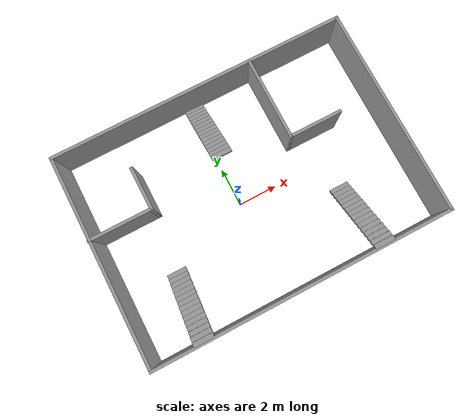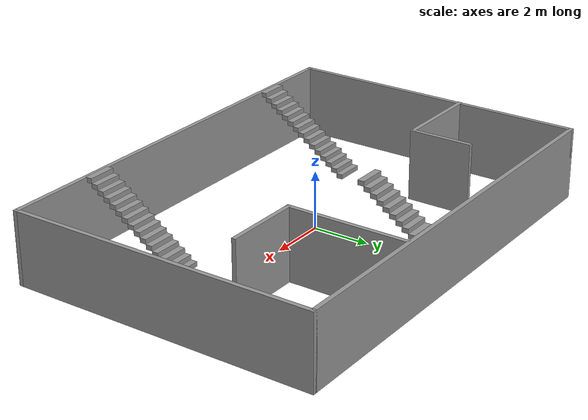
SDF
<?xml version='1.0'?>
<sdf version='1.7'>
  <model name='wall2'>
    <pose>0.678452 0.306167 0 0 -0 0</pose>
    <link name='Stairs_0'>
      <visual name='Stairs_0_Visual_0'>
        <pose>-4.95454 -1.89617 0.083333 0 -0 0</pose>
        <geometry>
          <box>
            <size>1 0.233333 0.166667</size>
          </box>
        </geometry>
        <material>
          <script>
            <uri>file://media/materials/scripts/gazebo.material</uri>
            <name>Gazebo/Grey</name>
          </script>
          <ambient>1 1 1 1</ambient>
        </material>
        <meta>
          <layer>0</layer>
        </meta>
      </visual>
      <collision name='Stairs_0_Collision_0'>
        <geometry>
          <box>
            <size>1 0.233333 0.166667</size>
          </box>
        </geometry>
        <pose>-4.95454 -1.89617 0.083333 0 -0 0</pose>
      </collision>
      <visual name='Stairs_0_Visual_1'>
        <pose>-4.95454 -2.1295 0.25 0 -0 0</pose>
        <geometry>
          <box>
            <size>1 0.233333 0.166667</size>
          </box>
        </geometry>
        <material>
          <script>
            <uri>file://media/materials/scripts/gazebo.material</uri>
            <name>Gazebo/Grey</name>
          </script>
          <ambient>1 1 1 1</ambient>
        </material>
        <meta>
          <layer>0</layer>
        </meta>
      </visual>
      <collision name='Stairs_0_Collision_1'>
        <geometry>
          <box>
            <size>1 0.233333 0.166667</size>
          </box>
        </geometry>
        <pose>-4.95454 -2.1295 0.25 0 -0 0</pose>
      </collision>
      <visual name='Stairs_0_Visual_2'>
        <pose>-4.95454 -2.36284 0.416667 0 -0 0</pose>
        <geometry>
          <box>
            <size>1 0.233333 0.166667</size>
          </box>
        </geometry>
        <material>
          <script>
            <uri>file://media/materials/scripts/gazebo.material</uri>
            <name>Gazebo/Grey</name>
          </script>
          <ambient>1 1 1 1</ambient>
        </material>
        <meta>
          <layer>0</layer>
        </meta>
      </visual>
      <collision name='Stairs_0_Collision_2'>
        <geometry>
          <box>
            <size>1 0.233333 0.166667</size>
          </box>
        </geometry>
        <pose>-4.95454 -2.36284 0.416667 0 -0 0</pose>
      </collision>
      <visual name='Stairs_0_Visual_3'>
        <pose>-4.95454 -2.59617 0.583333 0 -0 0</pose>
        <geometry>
          <box>
            <size>1 0.233333 0.166667</size>
          </box>
        </geometry>
        <material>
          <script>
            <uri>file://media/materials/scripts/gazebo.material</uri>
            <name>Gazebo/Grey</name>
          </script>
          <ambient>1 1 1 1</ambient>
        </material>
        <meta>
          <layer>0</layer>
        </meta>
      </visual>
      <collision name='Stairs_0_Collision_3'>
        <geometry>
          <box>
            <size>1 0.233333 0.166667</size>
          </box>
        </geometry>
        <pose>-4.95454 -2.59617 0.583333 0 -0 0</pose>
      </collision>
      <visual name='Stairs_0_Visual_4'>
        <pose>-4.95454 -2.8295 0.75 0 -0 0</pose>
        <geometry>
          <box>
            <size>1 0.233333 0.166667</size>
          </box>
        </geometry>
        <material>
          <script>
            <uri>file://media/materials/scripts/gazebo.material</uri>
            <name>Gazebo/Grey</name>
          </script>
          <ambient>1 1 1 1</ambient>
        </material>
        <meta>
          <layer>0</layer>
        </meta>
      </visual>
      <collision name='Stairs_0_Collision_4'>
        <geometry>
          <box>
            <size>1 0.233333 0.166667</size>
          </box>
        </geometry>
        <pose>-4.95454 -2.8295 0.75 0 -0 0</pose>
      </collision>
      <visual name='Stairs_0_Visual_5'>
        <pose>-4.95454 -3.06284 0.916667 0 -0 0</pose>
        <geometry>
          <box>
            <size>1 0.233333 0.166667</size>
          </box>
        </geometry>
        <material>
          <script>
            <uri>file://media/materials/scripts/gazebo.material</uri>
            <name>Gazebo/Grey</name>
          </script>
          <ambient>1 1 1 1</ambient>
        </material>
        <meta>
          <layer>0</layer>
        </meta>
      </visual>
      <collision name='Stairs_0_Collision_5'>
        <geometry>
          <box>
            <size>1 0.233333 0.166667</size>
          </box>
        </geometry>
        <pose>-4.95454 -3.06284 0.916667 0 -0 0</pose>
      </collision>
      <visual name='Stairs_0_Visual_6'>
        <pose>-4.95454 -3.29617 1.08333 0 -0 0</pose>
        <geometry>
          <box>
            <size>1 0.233333 0.166667</size>
          </box>
        </geometry>
        <material>
          <script>
            <uri>file://media/materials/scripts/gazebo.material</uri>
            <name>Gazebo/Grey</name>
          </script>
          <ambient>1 1 1 1</ambient>
        </material>
        <meta>
          <layer>0</layer>
        </meta>
      </visual>
      <collision name='Stairs_0_Collision_6'>
        <geometry>
          <box>
            <size>1 0.233333 0.166667</size>
          </box>
        </geometry>
        <pose>-4.95454 -3.29617 1.08333 0 -0 0</pose>
      </collision>
      <visual name='Stairs_0_Visual_7'>
        <pose>-4.95454 -3.5295 1.25 0 -0 0</pose>
        <geometry>
          <box>
            <size>1 0.233333 0.166667</size>
          </box>
        </geometry>
        <material>
          <script>
            <uri>file://media/materials/scripts/gazebo.material</uri>
            <name>Gazebo/Grey</name>
          </script>
          <ambient>1 1 1 1</ambient>
        </material>
        <meta>
          <layer>0</layer>
        </meta>
      </visual>
      <collision name='Stairs_0_Collision_7'>
        <geometry>
          <box>
            <size>1 0.233333 0.166667</size>
          </box>
        </geometry>
        <pose>-4.95454 -3.5295 1.25 0 -0 0</pose>
      </collision>
      <visual name='Stairs_0_Visual_8'>
        <pose>-4.95454 -3.76283 1.41667 0 -0 0</pose>
        <geometry>
          <box>
            <size>1 0.233333 0.166667</size>
          </box>
        </geometry>
        <material>
          <script>
            <uri>file://media/materials/scripts/gazebo.material</uri>
            <name>Gazebo/Grey</name>
          </script>
          <ambient>1 1 1 1</ambient>
        </material>
        <meta>
          <layer>0</layer>
        </meta>
      </visual>
      <collision name='Stairs_0_Collision_8'>
        <geometry>
          <box>
            <size>1 0.233333 0.166667</size>
          </box>
        </geometry>
        <pose>-4.95454 -3.76283 1.41667 0 -0 0</pose>
      </collision>
      <visual name='Stairs_0_Visual_9'>
        <pose>-4.95454 -3.99617 1.58333 0 -0 0</pose>
        <geometry>
          <box>
            <size>1 0.233333 0.166667</size>
          </box>
        </geometry>
        <material>
          <script>
            <uri>file://media/materials/scripts/gazebo.material</uri>
            <name>Gazebo/Grey</name>
          </script>
          <ambient>1 1 1 1</ambient>
        </material>
        <meta>
          <layer>0</layer>
        </meta>
      </visual>
      <collision name='Stairs_0_Collision_9'>
        <geometry>
          <box>
            <size>1 0.233333 0.166667</size>
          </box>
        </geometry>
        <pose>-4.95454 -3.99617 1.58333 0 -0 0</pose>
      </collision>
      <visual name='Stairs_0_Visual_10'>
        <pose>-4.95454 -4.2295 1.75 0 -0 0</pose>
        <geometry>
          <box>
            <size>1 0.233333 0.166667</size>
          </box>
        </geometry>
        <material>
          <script>
            <uri>file://media/materials/scripts/gazebo.material</uri>
            <name>Gazebo/Grey</name>
          </script>
          <ambient>1 1 1 1</ambient>
        </material>
        <meta>
          <layer>0</layer>
        </meta>
      </visual>
      <collision name='Stairs_0_Collision_10'>
        <geometry>
          <box>
            <size>1 0.233333 0.166667</size>
          </box>
        </geometry>
        <pose>-4.95454 -4.2295 1.75 0 -0 0</pose>
      </collision>
      <visual name='Stairs_0_Visual_11'>
        <pose>-4.95454 -4.46284 1.91667 0 -0 0</pose>
        <geometry>
          <box>
            <size>1 0.233333 0.166667</size>
          </box>
        </geometry>
        <material>
          <script>
            <uri>file://media/materials/scripts/gazebo.material</uri>
            <name>Gazebo/Grey</name>
          </script>
          <ambient>1 1 1 1</ambient>
        </material>
        <meta>
          <layer>0</layer>
        </meta>
      </visual>
      <collision name='Stairs_0_Collision_11'>
        <geometry>
          <box>
            <size>1 0.233333 0.166667</size>
          </box>
        </geometry>
        <pose>-4.95454 -4.46284 1.91667 0 -0 0</pose>
      </collision>
      <visual name='Stairs_0_Visual_12'>
        <pose>-4.95454 -4.69617 2.08333 0 -0 0</pose>
        <geometry>
          <box>
            <size>1 0.233333 0.166667</size>
          </box>
        </geometry>
        <material>
          <script>
            <uri>file://media/materials/scripts/gazebo.material</uri>
            <name>Gazebo/Grey</name>
          </script>
          <ambient>1 1 1 1</ambient>
        </material>
        <meta>
          <layer>0</layer>
        </meta>
      </visual>
      <collision name='Stairs_0_Collision_12'>
        <geometry>
          <box>
            <size>1 0.233333 0.166667</size>
          </box>
        </geometry>
        <pose>-4.95454 -4.69617 2.08333 0 -0 0</pose>
      </collision>
      <visual name='Stairs_0_Visual_13'>
        <pose>-4.95454 -4.9295 2.25 0 -0 0</pose>
        <geometry>
          <box>
            <size>1 0.233333 0.166667</size>
          </box>
        </geometry>
        <material>
          <script>
            <uri>file://media/materials/scripts/gazebo.material</uri>
            <name>Gazebo/Grey</name>
          </script>
          <ambient>1 1 1 1</ambient>
        </material>
        <meta>
          <layer>0</layer>
        </meta>
      </visual>
      <collision name='Stairs_0_Collision_13'>
        <geometry>
          <box>
            <size>1 0.233333 0.166667</size>
          </box>
        </geometry>
        <pose>-4.95454 -4.9295 2.25 0 -0 0</pose>
      </collision>
      <visual name='Stairs_0_Visual_14'>
        <pose>-4.95454 -5.16284 2.41667 0 -0 0</pose>
        <geometry>
          <box>
            <size>1 0.233333 0.166667</size>
          </box>
        </geometry>
        <material>
          <script>
            <uri>file://media/materials/scripts/gazebo.material</uri>
            <name>Gazebo/Grey</name>
          </script>
          <ambient>1 1 1 1</ambient>
        </material>
        <meta>
          <layer>0</layer>
        </meta>
      </visual>
      <collision name='Stairs_0_Collision_14'>
        <geometry>
          <box>
            <size>1 0.233333 0.166667</size>
          </box>
        </geometry>
        <pose>-4.95454 -5.16284 2.41667 0 -0 0</pose>
      </collision>
    </link>
    <link name='Stairs_1'>
      <visual name='Stairs_1_Visual_0'>
        <pose>-0.485702 5.12628 0.083333 0 -0 0</pose>
        <geometry>
          <box>
            <size>1 0.233333 0.166667</size>
          </box>
        </geometry>
        <material>
          <script>
            <uri>file://media/materials/scripts/gazebo.material</uri>
            <name>Gazebo/Grey</name>
          </script>
          <ambient>1 1 1 1</ambient>
        </material>
        <meta>
          <layer>0</layer>
        </meta>
      </visual>
      <collision name='Stairs_1_Collision_0'>
        <geometry>
          <box>
            <size>1 0.233333 0.166667</size>
          </box>
        </geometry>
        <pose>-0.485702 5.12628 0.083333 0 -0 0</pose>
      </collision>
      <visual name='Stairs_1_Visual_1'>
        <pose>-0.485702 4.89295 0.25 0 -0 0</pose>
        <geometry>
          <box>
            <size>1 0.233333 0.166667</size>
          </box>
        </geometry>
        <material>
          <script>
            <uri>file://media/materials/scripts/gazebo.material</uri>
            <name>Gazebo/Grey</name>
          </script>
          <ambient>1 1 1 1</ambient>
        </material>
        <meta>
          <layer>0</layer>
        </meta>
      </visual>
      <collision name='Stairs_1_Collision_1'>
        <geometry>
          <box>
            <size>1 0.233333 0.166667</size>
          </box>
        </geometry>
        <pose>-0.485702 4.89295 0.25 0 -0 0</pose>
      </collision>
      <visual name='Stairs_1_Visual_2'>
        <pose>-0.485702 4.65962 0.416667 0 -0 0</pose>
        <geometry>
          <box>
            <size>1 0.233333 0.166667</size>
          </box>
        </geometry>
        <material>
          <script>
            <uri>file://media/materials/scripts/gazebo.material</uri>
            <name>Gazebo/Grey</name>
          </script>
          <ambient>1 1 1 1</ambient>
        </material>
        <meta>
          <layer>0</layer>
        </meta>
      </visual>
      <collision name='Stairs_1_Collision_2'>
        <geometry>
          <box>
            <size>1 0.233333 0.166667</size>
          </box>
        </geometry>
        <pose>-0.485702 4.65962 0.416667 0 -0 0</pose>
      </collision>
      <visual name='Stairs_1_Visual_3'>
        <pose>-0.485702 4.42628 0.583333 0 -0 0</pose>
        <geometry>
          <box>
            <size>1 0.233333 0.166667</size>
          </box>
        </geometry>
        <material>
          <script>
            <uri>file://media/materials/scripts/gazebo.material</uri>
            <name>Gazebo/Grey</name>
          </script>
          <ambient>1 1 1 1</ambient>
        </material>
        <meta>
          <layer>0</layer>
        </meta>
      </visual>
      <collision name='Stairs_1_Collision_3'>
        <geometry>
          <box>
            <size>1 0.233333 0.166667</size>
          </box>
        </geometry>
        <pose>-0.485702 4.42628 0.583333 0 -0 0</pose>
      </collision>
      <visual name='Stairs_1_Visual_4'>
        <pose>-0.485702 4.19295 0.75 0 -0 0</pose>
        <geometry>
          <box>
            <size>1 0.233333 0.166667</size>
          </box>
        </geometry>
        <material>
          <script>
            <uri>file://media/materials/scripts/gazebo.material</uri>
            <name>Gazebo/Grey</name>
          </script>
          <ambient>1 1 1 1</ambient>
        </material>
        <meta>
          <layer>0</layer>
        </meta>
      </visual>
      <collision name='Stairs_1_Collision_4'>
        <geometry>
          <box>
            <size>1 0.233333 0.166667</size>
          </box>
        </geometry>
        <pose>-0.485702 4.19295 0.75 0 -0 0</pose>
      </collision>
      <visual name='Stairs_1_Visual_5'>
        <pose>-0.485702 3.95962 0.916667 0 -0 0</pose>
        <geometry>
          <box>
            <size>1 0.233333 0.166667</size>
          </box>
        </geometry>
        <material>
          <script>
            <uri>file://media/materials/scripts/gazebo.material</uri>
            <name>Gazebo/Grey</name>
          </script>
          <ambient>1 1 1 1</ambient>
        </material>
        <meta>
          <layer>0</layer>
        </meta>
      </visual>
      <collision name='Stairs_1_Collision_5'>
        <geometry>
          <box>
            <size>1 0.233333 0.166667</size>
          </box>
        </geometry>
        <pose>-0.485702 3.95962 0.916667 0 -0 0</pose>
      </collision>
      <visual name='Stairs_1_Visual_6'>
        <pose>-0.485702 3.72628 1.08333 0 -0 0</pose>
        <geometry>
          <box>
            <size>1 0.233333 0.166667</size>
          </box>
        </geometry>
        <material>
          <script>
            <uri>file://media/materials/scripts/gazebo.material</uri>
            <name>Gazebo/Grey</name>
          </script>
          <ambient>1 1 1 1</ambient>
        </material>
        <meta>
          <layer>0</layer>
        </meta>
      </visual>
      <collision name='Stairs_1_Collision_6'>
        <geometry>
          <box>
            <size>1 0.233333 0.166667</size>
          </box>
        </geometry>
        <pose>-0.485702 3.72628 1.08333 0 -0 0</pose>
      </collision>
      <visual name='Stairs_1_Visual_7'>
        <pose>-0.485702 3.49295 1.25 0 -0 0</pose>
        <geometry>
          <box>
            <size>1 0.233333 0.166667</size>
          </box>
        </geometry>
        <material>
          <script>
            <uri>file://media/materials/scripts/gazebo.material</uri>
            <name>Gazebo/Grey</name>
          </script>
          <ambient>1 1 1 1</ambient>
        </material>
        <meta>
          <layer>0</layer>
        </meta>
      </visual>
      <collision name='Stairs_1_Collision_7'>
        <geometry>
          <box>
            <size>1 0.233333 0.166667</size>
          </box>
        </geometry>
        <pose>-0.485702 3.49295 1.25 0 -0 0</pose>
      </collision>
      <visual name='Stairs_1_Visual_8'>
        <pose>-0.485702 3.25962 1.41667 0 -0 0</pose>
        <geometry>
          <box>
            <size>1 0.233333 0.166667</size>
          </box>
        </geometry>
        <material>
          <script>
            <uri>file://media/materials/scripts/gazebo.material</uri>
            <name>Gazebo/Grey</name>
          </script>
          <ambient>1 1 1 1</ambient>
        </material>
        <meta>
          <layer>0</layer>
        </meta>
      </visual>
      <collision name='Stairs_1_Collision_8'>
        <geometry>
          <box>
            <size>1 0.233333 0.166667</size>
          </box>
        </geometry>
        <pose>-0.485702 3.25962 1.41667 0 -0 0</pose>
      </collision>
      <visual name='Stairs_1_Visual_9'>
        <pose>-0.485702 3.02628 1.58333 0 -0 0</pose>
        <geometry>
          <box>
            <size>1 0.233333 0.166667</size>
          </box>
        </geometry>
        <material>
          <script>
            <uri>file://media/materials/scripts/gazebo.material</uri>
            <name>Gazebo/Grey</name>
          </script>
          <ambient>1 1 1 1</ambient>
        </material>
        <meta>
          <layer>0</layer>
        </meta>
      </visual>
      <collision name='Stairs_1_Collision_9'>
        <geometry>
          <box>
            <size>1 0.233333 0.166667</size>
          </box>
        </geometry>
        <pose>-0.485702 3.02628 1.58333 0 -0 0</pose>
      </collision>
      <visual name='Stairs_1_Visual_10'>
        <pose>-0.485702 2.79295 1.75 0 -0 0</pose>
        <geometry>
          <box>
            <size>1 0.233333 0.166667</size>
          </box>
        </geometry>
        <material>
          <script>
            <uri>file://media/materials/scripts/gazebo.material</uri>
            <name>Gazebo/Grey</name>
          </script>
          <ambient>1 1 1 1</ambient>
        </material>
        <meta>
          <layer>0</layer>
        </meta>
      </visual>
      <collision name='Stairs_1_Collision_10'>
        <geometry>
          <box>
            <size>1 0.233333 0.166667</size>
          </box>
        </geometry>
        <pose>-0.485702 2.79295 1.75 0 -0 0</pose>
      </collision>
      <visual name='Stairs_1_Visual_11'>
        <pose>-0.485702 2.55962 1.91667 0 -0 0</pose>
        <geometry>
          <box>
            <size>1 0.233333 0.166667</size>
          </box>
        </geometry>
        <material>
          <script>
            <uri>file://media/materials/scripts/gazebo.material</uri>
            <name>Gazebo/Grey</name>
          </script>
          <ambient>1 1 1 1</ambient>
        </material>
        <meta>
          <layer>0</layer>
        </meta>
      </visual>
      <collision name='Stairs_1_Collision_11'>
        <geometry>
          <box>
            <size>1 0.233333 0.166667</size>
          </box>
        </geometry>
        <pose>-0.485702 2.55962 1.91667 0 -0 0</pose>
      </collision>
      <visual name='Stairs_1_Visual_12'>
        <pose>-0.485702 2.32628 2.08333 0 -0 0</pose>
        <geometry>
          <box>
            <size>1 0.233333 0.166667</size>
          </box>
        </geometry>
        <material>
          <script>
            <uri>file://media/materials/scripts/gazebo.material</uri>
            <name>Gazebo/Grey</name>
          </script>
          <ambient>1 1 1 1</ambient>
        </material>
        <meta>
          <layer>0</layer>
        </meta>
      </visual>
      <collision name='Stairs_1_Collision_12'>
        <geometry>
          <box>
            <size>1 0.233333 0.166667</size>
          </box>
        </geometry>
        <pose>-0.485702 2.32628 2.08333 0 -0 0</pose>
      </collision>
      <visual name='Stairs_1_Visual_13'>
        <pose>-0.485702 2.09295 2.25 0 -0 0</pose>
        <geometry>
          <box>
            <size>1 0.233333 0.166667</size>
          </box>
        </geometry>
        <material>
          <script>
            <uri>file://media/materials/scripts/gazebo.material</uri>
            <name>Gazebo/Grey</name>
          </script>
          <ambient>1 1 1 1</ambient>
        </material>
        <meta>
          <layer>0</layer>
        </meta>
      </visual>
      <collision name='Stairs_1_Collision_13'>
        <geometry>
          <box>
            <size>1 0.233333 0.166667</size>
          </box>
        </geometry>
        <pose>-0.485702 2.09295 2.25 0 -0 0</pose>
      </collision>
      <visual name='Stairs_1_Visual_14'>
        <pose>-0.485702 1.85962 2.41667 0 -0 0</pose>
        <geometry>
          <box>
            <size>1 0.233333 0.166667</size>
          </box>
        </geometry>
        <material>
          <script>
            <uri>file://media/materials/scripts/gazebo.material</uri>
            <name>Gazebo/Grey</name>
          </script>
          <ambient>1 1 1 1</ambient>
        </material>
        <meta>
          <layer>0</layer>
        </meta>
      </visual>
      <collision name='Stairs_1_Collision_14'>
        <geometry>
          <box>
            <size>1 0.233333 0.166667</size>
          </box>
        </geometry>
        <pose>-0.485702 1.85962 2.41667 0 -0 0</pose>
      </collision>
    </link>
    <link name='Stairs_2'>
      <visual name='Stairs_2_Visual_0'>
        <pose>4.11613 -1.89617 0.083333 0 -0 0</pose>
        <geometry>
          <box>
            <size>1 0.233333 0.166667</size>
          </box>
        </geometry>
        <material>
          <script>
            <uri>file://media/materials/scripts/gazebo.material</uri>
            <name>Gazebo/Grey</name>
          </script>
          <ambient>1 1 1 1</ambient>
        </material>
        <meta>
          <layer>0</layer>
        </meta>
      </visual>
      <collision name='Stairs_2_Collision_0'>
        <geometry>
          <box>
            <size>1 0.233333 0.166667</size>
          </box>
        </geometry>
        <pose>4.11613 -1.89617 0.083333 0 -0 0</pose>
      </collision>
      <visual name='Stairs_2_Visual_1'>
        <pose>4.11613 -2.1295 0.25 0 -0 0</pose>
        <geometry>
          <box>
            <size>1 0.233333 0.166667</size>
          </box>
        </geometry>
        <material>
          <script>
            <uri>file://media/materials/scripts/gazebo.material</uri>
            <name>Gazebo/Grey</name>
          </script>
          <ambient>1 1 1 1</ambient>
        </material>
        <meta>
          <layer>0</layer>
        </meta>
      </visual>
      <collision name='Stairs_2_Collision_1'>
        <geometry>
          <box>
            <size>1 0.233333 0.166667</size>
          </box>
        </geometry>
        <pose>4.11613 -2.1295 0.25 0 -0 0</pose>
      </collision>
      <visual name='Stairs_2_Visual_2'>
        <pose>4.11613 -2.36284 0.416667 0 -0 0</pose>
        <geometry>
          <box>
            <size>1 0.233333 0.166667</size>
          </box>
        </geometry>
        <material>
          <script>
            <uri>file://media/materials/scripts/gazebo.material</uri>
            <name>Gazebo/Grey</name>
          </script>
          <ambient>1 1 1 1</ambient>
        </material>
        <meta>
          <layer>0</layer>
        </meta>
      </visual>
      <collision name='Stairs_2_Collision_2'>
        <geometry>
          <box>
            <size>1 0.233333 0.166667</size>
          </box>
        </geometry>
        <pose>4.11613 -2.36284 0.416667 0 -0 0</pose>
      </collision>
      <visual name='Stairs_2_Visual_3'>
        <pose>4.11613 -2.59617 0.583333 0 -0 0</pose>
        <geometry>
          <box>
            <size>1 0.233333 0.166667</size>
          </box>
        </geometry>
        <material>
          <script>
            <uri>file://media/materials/scripts/gazebo.material</uri>
            <name>Gazebo/Grey</name>
          </script>
          <ambient>1 1 1 1</ambient>
        </material>
        <meta>
          <layer>0</layer>
        </meta>
      </visual>
      <collision name='Stairs_2_Collision_3'>
        <geometry>
          <box>
            <size>1 0.233333 0.166667</size>
          </box>
        </geometry>
        <pose>4.11613 -2.59617 0.583333 0 -0 0</pose>
      </collision>
      <visual name='Stairs_2_Visual_4'>
        <pose>4.11613 -2.8295 0.75 0 -0 0</pose>
        <geometry>
          <box>
            <size>1 0.233333 0.166667</size>
          </box>
        </geometry>
        <material>
          <script>
            <uri>file://media/materials/scripts/gazebo.material</uri>
            <name>Gazebo/Grey</name>
          </script>
          <ambient>1 1 1 1</ambient>
        </material>
        <meta>
          <layer>0</layer>
        </meta>
      </visual>
      <collision name='Stairs_2_Collision_4'>
        <geometry>
          <box>
            <size>1 0.233333 0.166667</size>
          </box>
        </geometry>
        <pose>4.11613 -2.8295 0.75 0 -0 0</pose>
      </collision>
      <visual name='Stairs_2_Visual_5'>
        <pose>4.11613 -3.06284 0.916667 0 -0 0</pose>
        <geometry>
          <box>
            <size>1 0.233333 0.166667</size>
          </box>
        </geometry>
        <material>
          <script>
            <uri>file://media/materials/scripts/gazebo.material</uri>
            <name>Gazebo/Grey</name>
          </script>
          <ambient>1 1 1 1</ambient>
        </material>
        <meta>
          <layer>0</layer>
        </meta>
      </visual>
      <collision name='Stairs_2_Collision_5'>
        <geometry>
          <box>
            <size>1 0.233333 0.166667</size>
          </box>
        </geometry>
        <pose>4.11613 -3.06284 0.916667 0 -0 0</pose>
      </collision>
      <visual name='Stairs_2_Visual_6'>
        <pose>4.11613 -3.29617 1.08333 0 -0 0</pose>
        <geometry>
          <box>
            <size>1 0.233333 0.166667</size>
          </box>
        </geometry>
        <material>
          <script>
            <uri>file://media/materials/scripts/gazebo.material</uri>
            <name>Gazebo/Grey</name>
          </script>
          <ambient>1 1 1 1</ambient>
        </material>
        <meta>
          <layer>0</layer>
        </meta>
      </visual>
      <collision name='Stairs_2_Collision_6'>
        <geometry>
          <box>
            <size>1 0.233333 0.166667</size>
          </box>
        </geometry>
        <pose>4.11613 -3.29617 1.08333 0 -0 0</pose>
      </collision>
      <visual name='Stairs_2_Visual_7'>
        <pose>4.11613 -3.5295 1.25 0 -0 0</pose>
        <geometry>
          <box>
            <size>1 0.233333 0.166667</size>
          </box>
        </geometry>
        <material>
          <script>
            <uri>file://media/materials/scripts/gazebo.material</uri>
            <name>Gazebo/Grey</name>
          </script>
          <ambient>1 1 1 1</ambient>
        </material>
        <meta>
          <layer>0</layer>
        </meta>
      </visual>
      <collision name='Stairs_2_Collision_7'>
        <geometry>
          <box>
            <size>1 0.233333 0.166667</size>
          </box>
        </geometry>
        <pose>4.11613 -3.5295 1.25 0 -0 0</pose>
      </collision>
      <visual name='Stairs_2_Visual_8'>
        <pose>4.11613 -3.76283 1.41667 0 -0 0</pose>
        <geometry>
          <box>
            <size>1 0.233333 0.166667</size>
          </box>
        </geometry>
        <material>
          <script>
            <uri>file://media/materials/scripts/gazebo.material</uri>
            <name>Gazebo/Grey</name>
          </script>
          <ambient>1 1 1 1</ambient>
        </material>
        <meta>
          <layer>0</layer>
        </meta>
      </visual>
      <collision name='Stairs_2_Collision_8'>
        <geometry>
          <box>
            <size>1 0.233333 0.166667</size>
          </box>
        </geometry>
        <pose>4.11613 -3.76283 1.41667 0 -0 0</pose>
      </collision>
      <visual name='Stairs_2_Visual_9'>
        <pose>4.11613 -3.99617 1.58333 0 -0 0</pose>
        <geometry>
          <box>
            <size>1 0.233333 0.166667</size>
          </box>
        </geometry>
        <material>
          <script>
            <uri>file://media/materials/scripts/gazebo.material</uri>
            <name>Gazebo/Grey</name>
          </script>
          <ambient>1 1 1 1</ambient>
        </material>
        <meta>
          <layer>0</layer>
        </meta>
      </visual>
      <collision name='Stairs_2_Collision_9'>
        <geometry>
          <box>
            <size>1 0.233333 0.166667</size>
          </box>
        </geometry>
        <pose>4.11613 -3.99617 1.58333 0 -0 0</pose>
      </collision>
      <visual name='Stairs_2_Visual_10'>
        <pose>4.11613 -4.2295 1.75 0 -0 0</pose>
        <geometry>
          <box>
            <size>1 0.233333 0.166667</size>
          </box>
        </geometry>
        <material>
          <script>
            <uri>file://media/materials/scripts/gazebo.material</uri>
            <name>Gazebo/Grey</name>
          </script>
          <ambient>1 1 1 1</ambient>
        </material>
        <meta>
          <layer>0</layer>
        </meta>
      </visual>
      <collision name='Stairs_2_Collision_10'>
        <geometry>
          <box>
            <size>1 0.233333 0.166667</size>
          </box>
        </geometry>
        <pose>4.11613 -4.2295 1.75 0 -0 0</pose>
      </collision>
      <visual name='Stairs_2_Visual_11'>
        <pose>4.11613 -4.46284 1.91667 0 -0 0</pose>
        <geometry>
          <box>
            <size>1 0.233333 0.166667</size>
          </box>
        </geometry>
        <material>
          <script>
            <uri>file://media/materials/scripts/gazebo.material</uri>
            <name>Gazebo/Grey</name>
          </script>
          <ambient>1 1 1 1</ambient>
        </material>
        <meta>
          <layer>0</layer>
        </meta>
      </visual>
      <collision name='Stairs_2_Collision_11'>
        <geometry>
          <box>
            <size>1 0.233333 0.166667</size>
          </box>
        </geometry>
        <pose>4.11613 -4.46284 1.91667 0 -0 0</pose>
      </collision>
      <visual name='Stairs_2_Visual_12'>
        <pose>4.11613 -4.69617 2.08333 0 -0 0</pose>
        <geometry>
          <box>
            <size>1 0.233333 0.166667</size>
          </box>
        </geometry>
        <material>
          <script>
            <uri>file://media/materials/scripts/gazebo.material</uri>
            <name>Gazebo/Grey</name>
          </script>
          <ambient>1 1 1 1</ambient>
        </material>
        <meta>
          <layer>0</layer>
        </meta>
      </visual>
      <collision name='Stairs_2_Collision_12'>
        <geometry>
          <box>
            <size>1 0.233333 0.166667</size>
          </box>
        </geometry>
        <pose>4.11613 -4.69617 2.08333 0 -0 0</pose>
      </collision>
      <visual name='Stairs_2_Visual_13'>
        <pose>4.11613 -4.9295 2.25 0 -0 0</pose>
        <geometry>
          <box>
            <size>1 0.233333 0.166667</size>
          </box>
        </geometry>
        <material>
          <script>
            <uri>file://media/materials/scripts/gazebo.material</uri>
            <name>Gazebo/Grey</name>
          </script>
          <ambient>1 1 1 1</ambient>
        </material>
        <meta>
          <layer>0</layer>
        </meta>
      </visual>
      <collision name='Stairs_2_Collision_13'>
        <geometry>
          <box>
            <size>1 0.233333 0.166667</size>
          </box>
        </geometry>
        <pose>4.11613 -4.9295 2.25 0 -0 0</pose>
      </collision>
      <visual name='Stairs_2_Visual_14'>
        <pose>4.11613 -5.16284 2.41667 0 -0 0</pose>
        <geometry>
          <box>
            <size>1 0.233333 0.166667</size>
          </box>
        </geometry>
        <material>
          <script>
            <uri>file://media/materials/scripts/gazebo.material</uri>
            <name>Gazebo/Grey</name>
          </script>
          <ambient>1 1 1 1</ambient>
        </material>
        <meta>
          <layer>0</layer>
        </meta>
      </visual>
      <collision name='Stairs_2_Collision_14'>
        <geometry>
          <box>
            <size>1 0.233333 0.166667</size>
          </box>
        </geometry>
        <pose>4.11613 -5.16284 2.41667 0 -0 0</pose>
      </collision>
    </link>
    <link name='Wall_11'>
      <collision name='Wall_11_Collision'>
        <geometry>
          <box>
            <size>15.25 0.15 2.5</size>
          </box>
        </geometry>
        <pose>0 0 1.25 0 -0 0</pose>
      </collision>
      <visual name='Wall_11_Visual'>
        <pose>0 0 1.25 0 -0 0</pose>
        <geometry>
          <box>
            <size>15.25 0.15 2.5</size>
          </box>
        </geometry>
        <material>
          <script>
            <uri>file://media/materials/scripts/gazebo.material</uri>
            <name>Gazebo/Grey</name>
          </script>
          <ambient>1 1 1 1</ambient>
        </material>
        <meta>
          <layer>0</layer>
        </meta>
      </visual>
      <pose>0.011355 5.3 0 0 -0 0</pose>
    </link>
    <link name='Wall_12'>
      <collision name='Wall_12_Collision'>
        <geometry>
          <box>
            <size>10.75 0.15 2.5</size>
          </box>
        </geometry>
        <pose>0 0 1.25 0 -0 0</pose>
      </collision>
      <visual name='Wall_12_Visual'>
        <pose>0 0 1.25 0 -0 0</pose>
        <geometry>
          <box>
            <size>10.75 0.15 2.5</size>
          </box>
        </geometry>
        <material>
          <script>
            <uri>file://media/materials/scripts/gazebo.material</uri>
            <name>Gazebo/Grey</name>
          </script>
          <ambient>1 1 1 1</ambient>
        </material>
        <meta>
          <layer>0</layer>
        </meta>
      </visual>
      <pose>7.56135 -0 0 0 -0 -1.5708</pose>
    </link>
    <link name='Wall_13'>
      <collision name='Wall_13_Collision'>
        <geometry>
          <box>
            <size>15.25 0.15 2.5</size>
          </box>
        </geometry>
        <pose>0 0 1.25 0 -0 0</pose>
      </collision>
      <visual name='Wall_13_Visual'>
        <pose>0 0 1.25 0 -0 0</pose>
        <geometry>
          <box>
            <size>15.25 0.15 2.5</size>
          </box>
        </geometry>
        <material>
          <script>
            <uri>file://media/materials/scripts/gazebo.material</uri>
            <name>Gazebo/Grey</name>
          </script>
          <ambient>1 1 1 1</ambient>
        </material>
        <meta>
          <layer>0</layer>
        </meta>
      </visual>
      <pose>0.011355 -5.3 0 0 -0 3.14159</pose>
    </link>
    <link name='Wall_14'>
      <collision name='Wall_14_Collision'>
        <geometry>
          <box>
            <size>10.75 0.15 2.5</size>
          </box>
        </geometry>
        <pose>0 0 1.25 0 -0 0</pose>
      </collision>
      <visual name='Wall_14_Visual'>
        <pose>0 0 1.25 0 -0 0</pose>
        <geometry>
          <box>
            <size>10.75 0.15 2.5</size>
          </box>
        </geometry>
        <material>
          <script>
            <uri>file://media/materials/scripts/gazebo.material</uri>
            <name>Gazebo/Grey</name>
          </script>
          <ambient>1 1 1 1</ambient>
        </material>
        <meta>
          <layer>0</layer>
        </meta>
      </visual>
      <pose>-7.53864 -0 0 0 -0 1.5708</pose>
    </link>
    <link name='Wall_18'>
      <collision name='Wall_18_Collision'>
        <geometry>
          <box>
            <size>3.25 0.15 2.5</size>
          </box>
        </geometry>
        <pose>0 0 1.25 0 -0 0</pose>
      </collision>
      <visual name='Wall_18_Visual'>
        <pose>0 0 1.25 0 -0 0</pose>
        <geometry>
          <box>
            <size>3.25 0.15 2.5</size>
          </box>
        </geometry>
        <material>
          <script>
            <uri>file://media/materials/scripts/gazebo.material</uri>
            <name>Gazebo/Grey</name>
          </script>
          <ambient>1 1 1 1</ambient>
        </material>
        <meta>
          <layer>0</layer>
        </meta>
      </visual>
      <pose>-6.01136 1.04573 0 0 -0 0</pose>
    </link>
    <link name='Wall_19'>
      <collision name='Wall_19_Collision'>
        <geometry>
          <box>
            <size>2.25 0.15 2.5</size>
          </box>
        </geometry>
        <pose>0 0 1.25 0 -0 0</pose>
      </collision>
      <visual name='Wall_19_Visual'>
        <pose>0 0 1.25 0 -0 0</pose>
        <geometry>
          <box>
            <size>2.25 0.15 2.5</size>
          </box>
        </geometry>
        <material>
          <script>
            <uri>file://media/materials/scripts/gazebo.material</uri>
            <name>Gazebo/Grey</name>
          </script>
          <ambient>1 1 1 1</ambient>
        </material>
        <meta>
          <layer>0</layer>
        </meta>
      </visual>
      <pose>-4.46136 2.09573 0 0 -0 1.5708</pose>
    </link>
    <link name='Wall_22'>
      <collision name='Wall_22_Collision'>
        <geometry>
          <box>
            <size>4.25 0.15 2.5</size>
          </box>
        </geometry>
        <pose>0 0 1.25 0 -0 0</pose>
      </collision>
      <visual name='Wall_22_Visual'>
        <pose>0 0 1.25 0 -0 0</pose>
        <geometry>
          <box>
            <size>4.25 0.15 2.5</size>
          </box>
        </geometry>
        <material>
          <script>
            <uri>file://media/materials/scripts/gazebo.material</uri>
            <name>Gazebo/Grey</name>
          </script>
          <ambient>1 1 1 1</ambient>
        </material>
        <meta>
          <layer>0</layer>
        </meta>
      </visual>
      <pose>2.75952 3.14536 0 0 -0 -1.5708</pose>
    </link>
    <link name='Wall_23'>
      <collision name='Wall_23_Collision'>
        <geometry>
          <box>
            <size>2.75 0.15 2.5</size>
          </box>
        </geometry>
        <pose>0 0 1.25 0 -0 0</pose>
      </collision>
      <visual name='Wall_23_Visual'>
        <pose>0 0 1.25 0 -0 0</pose>
        <geometry>
          <box>
            <size>2.75 0.15 2.5</size>
          </box>
        </geometry>
        <material>
          <script>
            <uri>file://media/materials/scripts/gazebo.material</uri>
            <name>Gazebo/Grey</name>
          </script>
          <ambient>1 1 1 1</ambient>
        </material>
        <meta>
          <layer>0</layer>
        </meta>
      </visual>
      <pose>4.05952 1.09536 0 0 -0 0</pose>
    </link>
    <static>1</static>
  </model>
</sdf>
